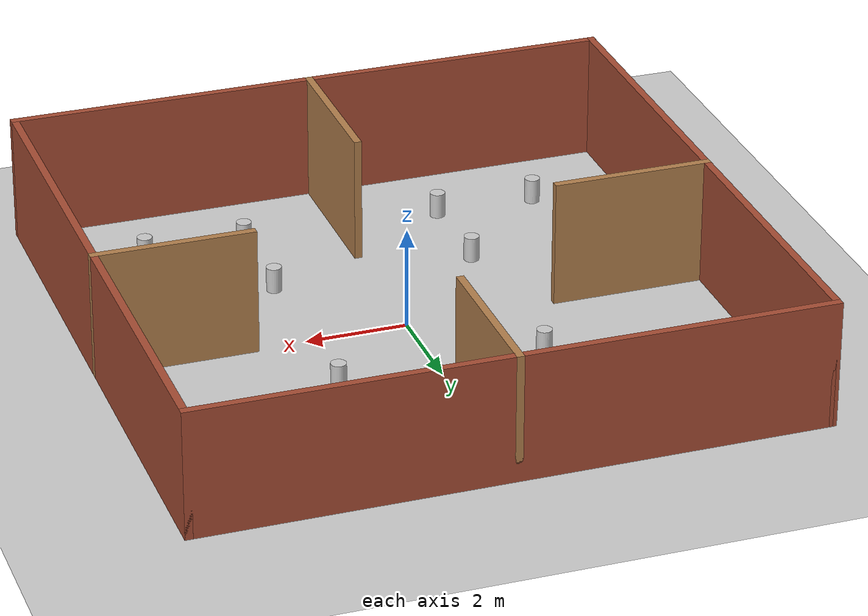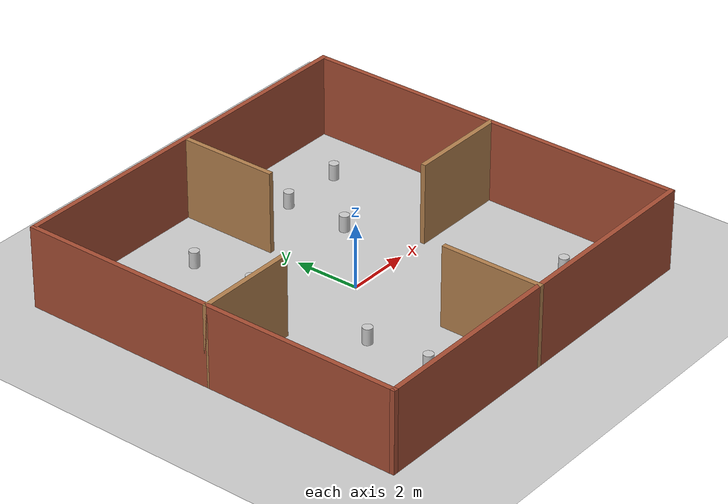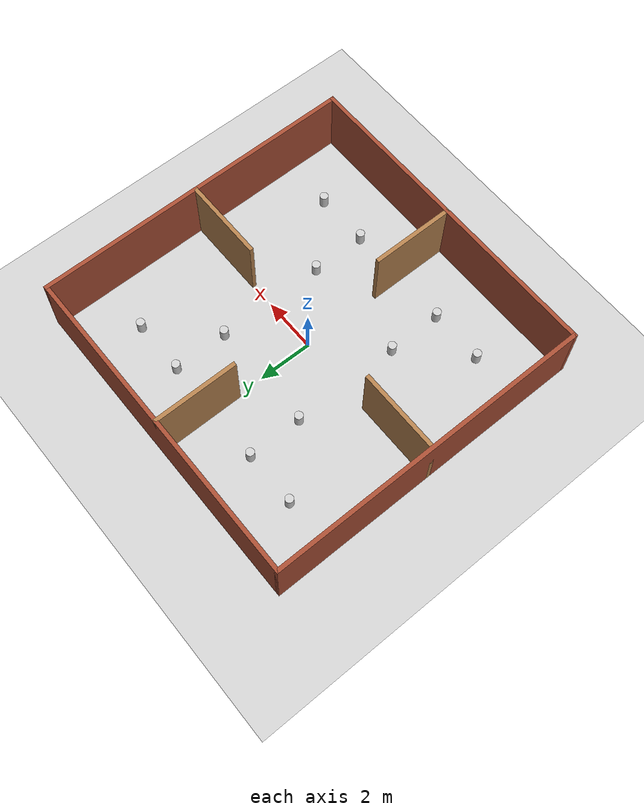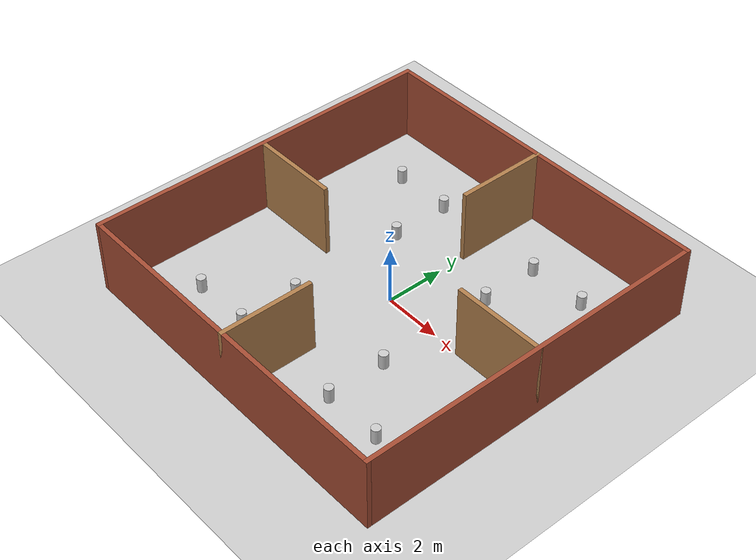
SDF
<?xml version="1.0" ?>
<sdf version="1.6">
  <world name="static_world">
    <physics name="1ms" type="ignored">
      <max_step_size>0.001</max_step_size>
      <real_time_factor>4.0</real_time_factor>
    </physics>

    <plugin filename="gz-sim-contact-system" name="gz::sim::systems::Contact" />
    <plugin filename="gz-sim-imu-system" name="gz::sim::systems::Imu" />
    <plugin filename="gz-sim-physics-system" name="gz::sim::systems::Physics" />
    <plugin filename="gz-sim-scene-broadcaster-system" name="gz::sim::systems::SceneBroadcaster" />
    <plugin filename="gz-sim-sensors-system" name="gz::sim::systems::Sensors" />
    <plugin filename="gz-sim-user-commands-system" name="gz::sim::systems::UserCommands" />

    <spherical_coordinates>
      <surface_model>EARTH_WGS84</surface_model>
      <world_frame_orientation>ENU</world_frame_orientation>
      <latitude_deg>50.088384</latitude_deg>
      <longitude_deg>19.939128</longitude_deg>
      <elevation>0</elevation>
      <heading_deg>0</heading_deg>
    </spherical_coordinates>

    <light type="directional" name="sun">
      <cast_shadows>true</cast_shadows>
      <pose>0 0 10 0 0 0</pose>
      <diffuse>0.8 0.8 0.8 1</diffuse>
      <specular>0.2 0.2 0.2 1</specular>
      <attenuation>
        <range>1000</range>
        <constant>0.9</constant>
        <linear>0.01</linear>
        <quadratic>0.001</quadratic>
      </attenuation>
      <direction>-0.5 0.1 -0.9</direction>
    </light>

    <model name="ground_plane">
      <static>true</static>
      <link name="link">
        <collision name="collision">
          <geometry>
            <plane>
              <normal>0 0 1</normal>
              <size>100 100</size>
            </plane>
          </geometry>
        </collision>
        <visual name="visual">
          <geometry>
            <plane>
              <normal>0 0 1</normal>
              <size>100 100</size>
            </plane>
          </geometry>
          <material>
            <ambient>0.8 0.8 0.8 1</ambient>
            <diffuse>0.8 0.8 0.8 1</diffuse>
            <specular>0.8 0.8 0.8 1</specular>
          </material>
        </visual>
      </link>
    </model>

    <model name="td7_world">
      <static>1</static>
      <include>
        <uri>model://td7_world</uri>
      </include>
    </model>

    <model name="obstacle_1">
      <pose>2 2 0.1 0 0 0</pose>
      <include>
        <uri>model://obstacle</uri>
      </include>
      <plugin
          filename="gz-sim-pose-publisher-system"
          name="gz::sim::systems::PosePublisher">
          <publish_link_pose>true</publish_link_pose>
          <publish_collision_pose>false</publish_collision_pose>
          <publish_visual_pose>false</publish_visual_pose>
          <publish_nested_model_pose>false</publish_nested_model_pose>
      </plugin>
    </model>

    <model name="obstacle_2">
      <pose>2 -2 0.1 0 0 0</pose>
      <include>
        <uri>model://obstacle</uri>
      </include>
    </model>

    <model name="obstacle_3">
      <pose>-2 -2 0.1 0 0 0</pose>
      <include>
        <uri>model://obstacle</uri>
      </include>
    </model>

    <model name="obstacle_4">
      <pose>-2 2 0.1 0 0 0</pose>
      <include>
        <uri>model://obstacle</uri>
      </include>
    </model>

    <model name="obstacle_5">
      <pose>4 4 0.1 0 0 0</pose>
      <include>
        <uri>model://obstacle</uri>
      </include>
    </model>

    <model name="obstacle_6">
      <pose>4 -4 0.1 0 0 0</pose>
      <include>
        <uri>model://obstacle</uri>
      </include>
    </model>

    <model name="obstacle_7">
      <pose>-4 -4 0.1 0 0 0</pose>
      <include>
        <uri>model://obstacle</uri>
      </include>
    </model>

    <model name="obstacle_8">
      <pose>-4 4 0.1 0 0 0</pose>
      <include>
        <uri>model://obstacle</uri>
      </include>
    </model>

    <model name="obstacle_9">
      <pose>2 4 0.1 0 0 0</pose>
      <include>
        <uri>model://obstacle</uri>
      </include>
    </model>

    <model name="obstacle_10">
      <pose>2 -4 0.1 0 0 0</pose>
      <include>
        <uri>model://obstacle</uri>
      </include>
    </model>

    <model name="obstacle_11">
      <pose>-2 -4 0.1 0 0 0</pose>
      <include>
        <uri>model://obstacle</uri>
      </include>
    </model>

    <model name="obstacle_12">
      <pose>-2 4 0.1 0 0 0</pose>
      <include>
        <uri>model://obstacle</uri>
      </include>
    </model>

  </world>
</sdf>

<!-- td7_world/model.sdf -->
<sdf version='1.7'>
  <model name='td7_world'>
    <pose>0 0 0 0 -0 0</pose>
    <link name='Wall_0'>
      <collision name='Wall_0_Collision'>
        <geometry>
          <box>
            <size>12.15 0.15 2.5</size>
          </box>
        </geometry>
        <pose>0 0 1.25 0 -0 0</pose>
      </collision>
      <visual name='Wall_0_Visual'>
        <pose>0 0 1.25 0 -0 0</pose>
        <geometry>
          <box>
            <size>12.15 0.15 2.5</size>
          </box>
        </geometry>
        <material>
          <script>
            <uri>file://media/materials/scripts/gazebo.material</uri>
            <name>Gazebo/Bricks</name>
          </script>
          <ambient>1 1 1 1</ambient>
        </material>
        <meta>
          <layer>0</layer>
        </meta>
      </visual>
      <pose>0 6 0 0 -0 0</pose>
    </link>
    <link name='Wall_1'>
      <collision name='Wall_1_Collision'>
        <geometry>
          <box>
            <size>12.15 0.15 2.5</size>
          </box>
        </geometry>
        <pose>0 0 1.25 0 -0 0</pose>
      </collision>
      <visual name='Wall_1_Visual'>
        <pose>0 0 1.25 0 -0 0</pose>
        <geometry>
          <box>
            <size>12.15 0.15 2.5</size>
          </box>
        </geometry>
        <material>
          <script>
            <uri>file://media/materials/scripts/gazebo.material</uri>
            <name>Gazebo/Bricks</name>
          </script>
          <ambient>1 1 1 1</ambient>
        </material>
        <meta>
          <layer>0</layer>
        </meta>
      </visual>
      <pose>6 0 0 0 -0 -1.5708</pose>
    </link>
    <link name='Wall_11'>
      <collision name='Wall_11_Collision'>
        <geometry>
          <box>
            <size>3.15 0.15 2.5</size>
          </box>
        </geometry>
        <pose>0 0 1.25 0 -0 0</pose>
      </collision>
      <visual name='Wall_11_Visual'>
        <pose>0 0 1.25 0 -0 0</pose>
        <geometry>
          <box>
            <size>3.15 0.15 2.5</size>
          </box>
        </geometry>
        <material>
          <script>
            <uri>file://media/materials/scripts/gazebo.material</uri>
            <name>Gazebo/Wood</name>
          </script>
          <ambient>1 1 1 1</ambient>
        </material>
        <meta>
          <layer>0</layer>
        </meta>
      </visual>
      <pose>4.5 0 0 0 -0 3.14159</pose>
    </link>
    <link name='Wall_2'>
      <collision name='Wall_2_Collision'>
        <geometry>
          <box>
            <size>12.15 0.15 2.5</size>
          </box>
        </geometry>
        <pose>0 0 1.25 0 -0 0</pose>
      </collision>
      <visual name='Wall_2_Visual'>
        <pose>0 0 1.25 0 -0 0</pose>
        <geometry>
          <box>
            <size>12.15 0.15 2.5</size>
          </box>
        </geometry>
        <material>
          <script>
            <uri>file://media/materials/scripts/gazebo.material</uri>
            <name>Gazebo/Bricks</name>
          </script>
          <ambient>1 1 1 1</ambient>
        </material>
        <meta>
          <layer>0</layer>
        </meta>
      </visual>
      <pose>0 -6 0 0 -0 3.14159</pose>
    </link>
    <link name='Wall_3'>
      <collision name='Wall_3_Collision'>
        <geometry>
          <box>
            <size>12.15 0.15 2.5</size>
          </box>
        </geometry>
        <pose>0 0 1.25 0 -0 0</pose>
      </collision>
      <visual name='Wall_3_Visual'>
        <pose>0 0 1.25 0 -0 0</pose>
        <geometry>
          <box>
            <size>12.15 0.15 2.5</size>
          </box>
        </geometry>
        <material>
          <script>
            <uri>file://media/materials/scripts/gazebo.material</uri>
            <name>Gazebo/Bricks</name>
          </script>
          <ambient>1 1 1 1</ambient>
        </material>
        <meta>
          <layer>0</layer>
        </meta>
      </visual>
      <pose>-6 0 0 0 -0 1.5708</pose>
    </link>
    <link name='Wall_5'>
      <collision name='Wall_5_Collision'>
        <geometry>
          <box>
            <size>3.15 0.15 2.5</size>
          </box>
        </geometry>
        <pose>0 0 1.25 0 -0 0</pose>
      </collision>
      <visual name='Wall_5_Visual'>
        <pose>0 0 1.25 0 -0 0</pose>
        <geometry>
          <box>
            <size>3.15 0.15 2.5</size>
          </box>
        </geometry>
        <material>
          <script>
            <uri>file://media/materials/scripts/gazebo.material</uri>
            <name>Gazebo/Wood</name>
          </script>
          <ambient>1 1 1 1</ambient>
        </material>
        <meta>
          <layer>0</layer>
        </meta>
      </visual>
      <pose>0 4.5 0 0 -0 -1.5708</pose>
    </link>
    <link name='Wall_7'>
      <collision name='Wall_7_Collision'>
        <geometry>
          <box>
            <size>3.15 0.15 2.5</size>
          </box>
        </geometry>
        <pose>0 0 1.25 0 -0 0</pose>
      </collision>
      <visual name='Wall_7_Visual'>
        <pose>0 0 1.25 0 -0 0</pose>
        <geometry>
          <box>
            <size>3.15 0.15 2.5</size>
          </box>
        </geometry>
        <material>
          <script>
            <uri>file://media/materials/scripts/gazebo.material</uri>
            <name>Gazebo/Wood</name>
          </script>
          <ambient>1 1 1 1</ambient>
        </material>
        <meta>
          <layer>0</layer>
        </meta>
      </visual>
      <pose>0 -4.5 0 0 -0 1.5708</pose>
    </link>
    <link name='Wall_9'>
      <collision name='Wall_9_Collision'>
        <geometry>
          <box>
            <size>3.15 0.15 2.5</size>
          </box>
        </geometry>
        <pose>0 0 1.25 0 -0 0</pose>
      </collision>
      <visual name='Wall_9_Visual'>
        <pose>0 0 1.25 0 -0 0</pose>
        <geometry>
          <box>
            <size>3.15 0.15 2.5</size>
          </box>
        </geometry>
        <material>
          <script>
            <uri>file://media/materials/scripts/gazebo.material</uri>
            <name>Gazebo/Wood</name>
          </script>
          <ambient>1 1 1 1</ambient>
        </material>
        <meta>
          <layer>0</layer>
        </meta>
      </visual>
      <pose>-4.5 0 0 0 -0 0</pose>
    </link>
    <static>1</static>
  </model>
</sdf>

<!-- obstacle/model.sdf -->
<sdf version='1.6'>
  <model name='obstacle'>
    <pose frame=''>0 0 0 0 0 0</pose>
    <link name='cylinder'>
      <collision name='collision'>
        <pose>0 0 0.25 0 0 0</pose>
        <geometry>
          <cylinder>
            <radius>0.15</radius>
            <length>0.5</length>
          </cylinder>
        </geometry>
      </collision>
      <visual name='visual'>
        <pose>0 0 0.25 0 0 0</pose>
        <geometry>
          <cylinder>
            <radius>0.15</radius>
            <length>0.5</length>
          </cylinder>
        </geometry>
        <material>
          <ambient>0.8 0.8 0.8 1</ambient>
          <diffuse>0.8 0.8 0.8 1</diffuse>
        </material>
      </visual>
    </link>
    <static>false</static>
  </model>
</sdf>
